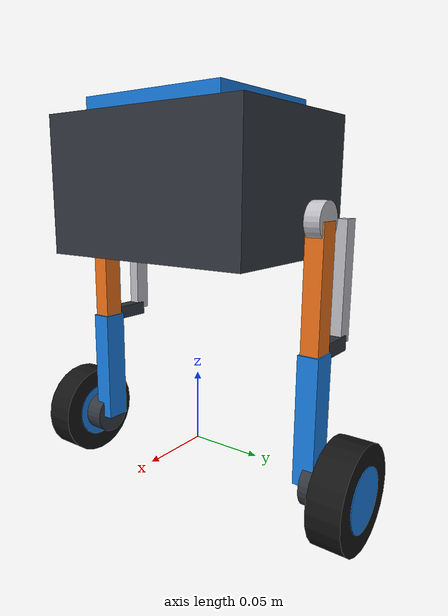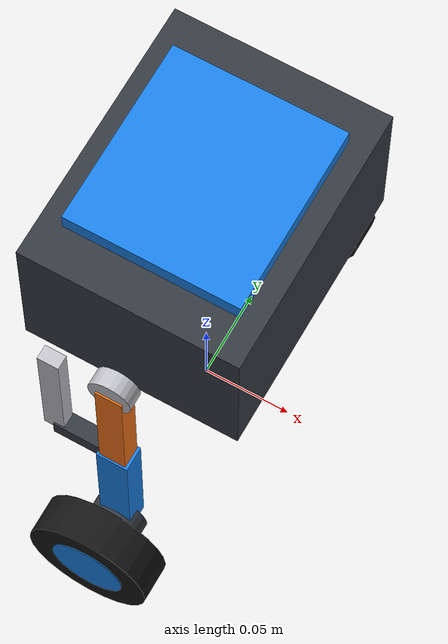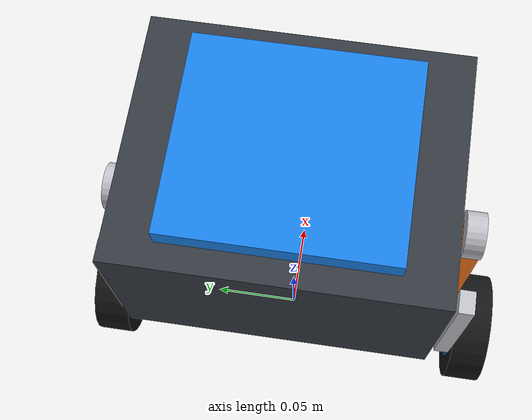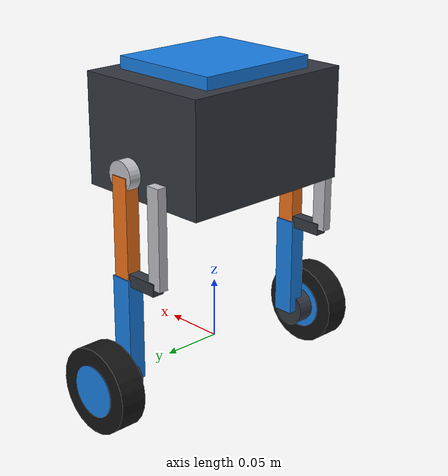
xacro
<?xml version="1.0"?>
<robot name="wobble" xmlns:xacro="http://www.ros.org/wiki/xacro">

  <!-- Arguments -->
  <xacro:arg name="use_sim_time" default="true"/>

  <!-- Include sub-assemblies -->
  <xacro:include filename="$(find wobble_description)/urdf/materials.xacro"/>
  <xacro:include filename="$(find wobble_description)/urdf/chassis.xacro"/>
  <xacro:include filename="$(find wobble_description)/urdf/leg_4bar.xacro"/>
  <xacro:include filename="$(find wobble_description)/urdf/wheels.xacro"/>
  <xacro:include filename="$(find wobble_description)/urdf/ros2_control.xacro"/>
  <xacro:include filename="$(find wobble_description)/urdf/gazebo.xacro"/>

  <!-- Left 4-Bar Leg & Drive Wheel -->
  <xacro:wobble_leg prefix="left" reflect="1"/>
  <xacro:wobble_wheel prefix="left" reflect="1"/>

  <!-- Right 4-Bar Leg & Drive Wheel -->
  <xacro:wobble_leg prefix="right" reflect="-1"/>
  <xacro:wobble_wheel prefix="right" reflect="-1"/>

</robot>

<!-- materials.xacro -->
<robot xmlns:xacro="http://www.ros.org/wiki/xacro">

  <material name="dark_gray">
    <color rgba="0.2 0.22 0.25 1.0"/>
  </material>

  <material name="light_gray">
    <color rgba="0.75 0.75 0.78 1.0"/>
  </material>

  <material name="accent_blue">
    <color rgba="0.1 0.5 0.9 1.0"/>
  </material>

  <material name="accent_orange">
    <color rgba="0.95 0.45 0.1 1.0"/>
  </material>

  <material name="rubber_black">
    <color rgba="0.08 0.08 0.08 1.0"/>
  </material>

  <material name="gold">
    <color rgba="0.85 0.65 0.15 1.0"/>
  </material>

</robot>

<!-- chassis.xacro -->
<robot xmlns:xacro="http://www.ros.org/wiki/xacro">

  <!-- Torso & Electronics Properties -->
  <xacro:property name="chassis_mass" value="0.75"/>
  <xacro:property name="chassis_length" value="0.12"/>
  <xacro:property name="chassis_width" value="0.15"/>
  <xacro:property name="chassis_height" value="0.09"/>

  <link name="base_footprint"/>

  <joint name="base_footprint_joint" type="fixed">
    <parent link="base_footprint"/>
    <child link="base_link"/>
    <origin xyz="0 0 0.18" rpy="0 0 0"/>
  </joint>

  <!-- Base Link / Torso Link -->
  <link name="base_link">
    <!-- Visual: Main Central Electronics & Battery Box -->
    <visual>
      <origin xyz="0 0 0" rpy="0 0 0"/>
      <geometry>
        <box size="${chassis_length} ${chassis_width} ${chassis_height}"/>
      </geometry>
      <material name="dark_gray"/>
    </visual>

    <!-- Visual: Top Accent Plate (ESP32-S3 Housing) -->
    <visual>
      <origin xyz="0 0 ${chassis_height/2 + 0.005}" rpy="0 0 0"/>
      <geometry>
        <box size="${chassis_length * 0.8} ${chassis_width * 0.7} 0.01"/>
      </geometry>
      <material name="accent_blue"/>
    </visual>

    <!-- Collision -->
    <collision>
      <origin xyz="0 0 0" rpy="0 0 0"/>
      <geometry>
        <box size="${chassis_length} ${chassis_width} ${chassis_height}"/>
      </geometry>
    </collision>

    <!-- Inertial: Chassis Box Inertia -->
    <inertial>
      <origin xyz="0 0 0.01" rpy="0 0 0"/>
      <mass value="${chassis_mass}"/>
      <inertia
        ixx="${(chassis_mass / 12.0) * (chassis_width*chassis_width + chassis_height*chassis_height)}"
        ixy="0.0"
        ixz="0.0"
        iyy="${(chassis_mass / 12.0) * (chassis_length*chassis_length + chassis_height*chassis_height)}"
        iyz="0.0"
        izz="${(chassis_mass / 12.0) * (chassis_length*chassis_length + chassis_width*chassis_width)}"/>
    </inertial>
  </link>

  <!-- MPU6050 IMU Sensor Link & Mount -->
  <link name="imu_link">
    <visual>
      <origin xyz="0 0 0" rpy="0 0 0"/>
      <geometry>
        <box size="0.02 0.02 0.004"/>
      </geometry>
      <material name="gold"/>
    </visual>
    <inertial>
      <origin xyz="0 0 0" rpy="0 0 0"/>
      <mass value="0.005"/>
      <inertia ixx="1e-6" ixy="0" ixz="0" iyy="1e-6" iyz="0" izz="1e-6"/>
    </inertial>
  </link>

  <joint name="imu_joint" type="fixed">
    <parent link="base_link"/>
    <child link="imu_link"/>
    <origin xyz="0 0 0.02" rpy="0 0 0"/>
  </joint>

</robot>

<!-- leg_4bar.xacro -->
<robot xmlns:xacro="http://www.ros.org/wiki/xacro">

  <xacro:macro name="wobble_leg" params="prefix reflect">

    <!-- Geometric dimensions -->
    <xacro:property name="servo_y_offset" value="${reflect * (chassis_width / 2.0 + 0.015)}"/>
    <xacro:property name="crank_length" value="0.08"/>
    <xacro:property name="coupler_length" value="0.085"/>
    <xacro:property name="link_radius" value="0.006"/>
    <xacro:property name="link_mass" value="0.04"/>

    <!-- ==================== 1. Hip Servo (MG995) Housing & Actuator ==================== -->
    <link name="${prefix}_servo_horn">
      <visual>
        <origin xyz="0 0 0" rpy="${pi/2} 0 0"/>
        <geometry>
          <cylinder radius="0.012" length="0.01"/>
        </geometry>
        <material name="light_gray"/>
      </visual>
      <inertial>
        <origin xyz="0 0 0" rpy="0 0 0"/>
        <mass value="0.02"/>
        <inertia ixx="1e-5" ixy="0" ixz="0" iyy="1e-5" iyz="0" izz="1e-5"/>
      </inertial>
    </link>

    <!-- MG995 Hip Servo Joint: restricted to [-1.57, 1.57] radians per AGENT.md -->
    <joint name="joint_${prefix}_hip_servo" type="revolute">
      <parent link="base_link"/>
      <child link="${prefix}_servo_horn"/>
      <origin xyz="0.0 ${servo_y_offset} -0.02" rpy="0 0 0"/>
      <axis xyz="0 1 0"/>
      <limit lower="-1.570796" upper="1.570796" effort="2.0" velocity="10.0"/>
      <dynamics damping="0.05" friction="0.02"/>
    </joint>

    <!-- ==================== 2. Upper Crank Link ==================== -->
    <link name="${prefix}_upper_crank">
      <visual>
        <origin xyz="0 0 ${-crank_length/2}" rpy="0 0 0"/>
        <geometry>
          <box size="0.015 0.012 ${crank_length}"/>
        </geometry>
        <material name="accent_orange"/>
      </visual>
      <collision>
        <origin xyz="0 0 ${-crank_length/2}" rpy="0 0 0"/>
        <geometry>
          <box size="0.015 0.012 ${crank_length}"/>
        </geometry>
      </collision>
      <inertial>
        <origin xyz="0 0 ${-crank_length/2}" rpy="0 0 0"/>
        <mass value="${link_mass}"/>
        <inertia
          ixx="${(link_mass/12.0) * (0.012*0.012 + crank_length*crank_length)}"
          ixy="0" ixz="0"
          iyy="${(link_mass/12.0) * (0.015*0.015 + crank_length*crank_length)}"
          iyz="0"
          izz="${(link_mass/12.0) * (0.015*0.015 + 0.012*0.012)}"/>
      </inertial>
    </link>

    <joint name="joint_${prefix}_crank_mount" type="fixed">
      <parent link="${prefix}_servo_horn"/>
      <child link="${prefix}_upper_crank"/>
      <origin xyz="0 0 0" rpy="0 0 0"/>
    </joint>

    <!-- ==================== 3. Parallel Rocker Link (4-Bar Kinematics) ==================== -->
    <link name="${prefix}_parallel_rocker">
      <visual>
        <origin xyz="0 0 ${-crank_length/2}" rpy="0 0 0"/>
        <geometry>
          <box size="0.012 0.008 ${crank_length}"/>
        </geometry>
        <material name="light_gray"/>
      </visual>
      <collision>
        <origin xyz="0 0 ${-crank_length/2}" rpy="0 0 0"/>
        <geometry>
          <box size="0.012 0.008 ${crank_length}"/>
        </geometry>
      </collision>
      <inertial>
        <origin xyz="0 0 ${-crank_length/2}" rpy="0 0 0"/>
        <mass value="${link_mass * 0.7}"/>
        <inertia ixx="1e-5" ixy="0" ixz="0" iyy="1e-5" iyz="0" izz="1e-5"/>
      </inertial>
    </link>

    <joint name="joint_${prefix}_rocker_hip" type="continuous">
      <parent link="base_link"/>
      <child link="${prefix}_parallel_rocker"/>
      <origin xyz="-0.035 ${servo_y_offset} -0.02" rpy="0 0 0"/>
      <axis xyz="0 1 0"/>
      <mimic joint="joint_${prefix}_hip_servo" multiplier="1.0" offset="0.0"/>
      <dynamics damping="0.02" friction="0.01"/>
    </joint>

    <!-- ==================== 4. Lower Leg / Wheel Carrier Link ==================== -->
    <link name="${prefix}_lower_leg">
      <visual>
        <origin xyz="0 0 ${-coupler_length/2}" rpy="0 0 0"/>
        <geometry>
          <box size="0.018 0.014 ${coupler_length}"/>
        </geometry>
        <material name="accent_blue"/>
      </visual>
      <!-- Horizontal crossbar for 4-bar linkage coupler -->
      <visual>
        <origin xyz="-0.0175 0 0" rpy="0 0 0"/>
        <geometry>
          <box size="0.035 0.01 0.01"/>
        </geometry>
        <material name="dark_gray"/>
      </visual>
      <collision>
        <origin xyz="0 0 ${-coupler_length/2}" rpy="0 0 0"/>
        <geometry>
          <box size="0.018 0.014 ${coupler_length}"/>
        </geometry>
      </collision>
      <inertial>
        <origin xyz="0 0 ${-coupler_length/2}" rpy="0 0 0"/>
        <mass value="0.06"/>
        <inertia
          ixx="${(0.06/12.0) * (0.014*0.014 + coupler_length*coupler_length)}"
          ixy="0" ixz="0"
          iyy="${(0.06/12.0) * (0.018*0.018 + coupler_length*coupler_length)}"
          iyz="0"
          izz="${(0.06/12.0) * (0.018*0.018 + 0.014*0.014)}"/>
      </inertial>
    </link>

    <!-- 4-bar parallelogram knee joint keeping wheel carrier aligned during squatting -->
    <joint name="joint_${prefix}_knee" type="continuous">
      <parent link="${prefix}_upper_crank"/>
      <child link="${prefix}_lower_leg"/>
      <origin xyz="0 0 ${-crank_length}" rpy="0 0 0"/>
      <axis xyz="0 1 0"/>
      <mimic joint="joint_${prefix}_hip_servo" multiplier="-1.0" offset="0.0"/>
      <dynamics damping="0.03" friction="0.01"/>
    </joint>

    <!-- ==================== 5. Suspension / Spring Compliant Mount ==================== -->
    <!-- Passively sprung suspension mount to absorb shock and reduce holding torque on MG995 -->
    <link name="${prefix}_wheel_hub">
      <visual>
        <origin xyz="0 0 0" rpy="${pi/2} 0 0"/>
        <geometry>
          <cylinder radius="0.015" length="0.02"/>
        </geometry>
        <material name="dark_gray"/>
      </visual>
      <inertial>
        <origin xyz="0 0 0" rpy="0 0 0"/>
        <mass value="0.03"/>
        <inertia ixx="1e-5" ixy="0" ixz="0" iyy="1e-5" iyz="0" izz="1e-5"/>
      </inertial>
    </link>

    <joint name="joint_${prefix}_suspension" type="prismatic">
      <parent link="${prefix}_lower_leg"/>
      <child link="${prefix}_wheel_hub"/>
      <origin xyz="0 ${reflect * 0.01} ${-coupler_length}" rpy="0 0 0"/>
      <axis xyz="0 0 1"/>
      <limit lower="-0.01" upper="0.01" effort="50.0" velocity="1.0"/>
      <dynamics damping="15.0" friction="0.5" spring_reference="0.0" spring_stiffness="2500.0"/>
    </joint>

  </xacro:macro>

</robot>

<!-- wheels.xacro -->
<robot xmlns:xacro="http://www.ros.org/wiki/xacro">

  <xacro:macro name="wobble_wheel" params="prefix reflect">

    <xacro:property name="wheel_radius" value="0.035"/>
    <xacro:property name="wheel_width" value="0.022"/>
    <xacro:property name="wheel_mass" value="0.065"/>

    <link name="${prefix}_wheel">
      <!-- Outer Rubber Tire -->
      <visual>
        <origin xyz="0 0 0" rpy="${pi/2} 0 0"/>
        <geometry>
          <cylinder radius="${wheel_radius}" length="${wheel_width}"/>
        </geometry>
        <material name="rubber_black"/>
      </visual>

      <!-- Inner Rim Accent -->
      <visual>
        <origin xyz="0 0 0" rpy="${pi/2} 0 0"/>
        <geometry>
          <cylinder radius="${wheel_radius * 0.6}" length="${wheel_width + 0.001}"/>
        </geometry>
        <material name="accent_blue"/>
      </visual>

      <!-- Collision Cylinder -->
      <collision>
        <origin xyz="0 0 0" rpy="${pi/2} 0 0"/>
        <geometry>
          <cylinder radius="${wheel_radius}" length="${wheel_width}"/>
        </geometry>
      </collision>

      <!-- Inertia for Solid Cylinder -->
      <inertial>
        <origin xyz="0 0 0" rpy="${pi/2} 0 0"/>
        <mass value="${wheel_mass}"/>
        <inertia
          ixx="${(wheel_mass / 12.0) * (3.0*wheel_radius*wheel_radius + wheel_width*wheel_width)}"
          ixy="0.0" ixz="0.0"
          iyy="${(wheel_mass / 12.0) * (3.0*wheel_radius*wheel_radius + wheel_width*wheel_width)}"
          iyz="0.0"
          izz="${0.5 * wheel_mass * wheel_radius * wheel_radius}"/>
      </inertial>
    </link>

    <!-- Continuous Drive Wheel Joint (DC Encoder Motor) -->
    <joint name="joint_${prefix}_wheel" type="continuous">
      <parent link="${prefix}_wheel_hub"/>
      <child link="${prefix}_wheel"/>
      <origin xyz="0 ${reflect * (wheel_width/2.0 + 0.005)} 0" rpy="0 0 0"/>
      <axis xyz="0 1 0"/>
      <dynamics damping="0.005" friction="0.002"/>
    </joint>

    <gazebo reference="${prefix}_wheel">
      <mu1>1.5</mu1>
      <mu2>1.5</mu2>
      <kp>1000000.0</kp>
      <kd>100.0</kd>
      <minDepth>0.001</minDepth>
      <maxVel>10.0</maxVel>
      <material>Gazebo/DarkGrey</material>
    </gazebo>

  </xacro:macro>

</robot>
